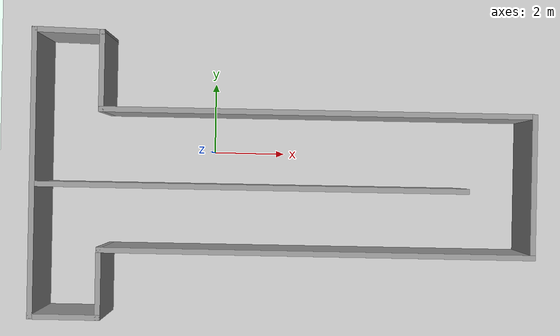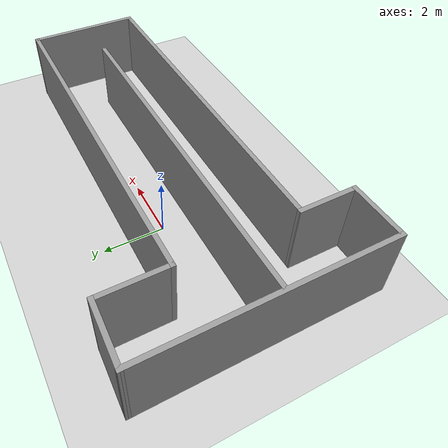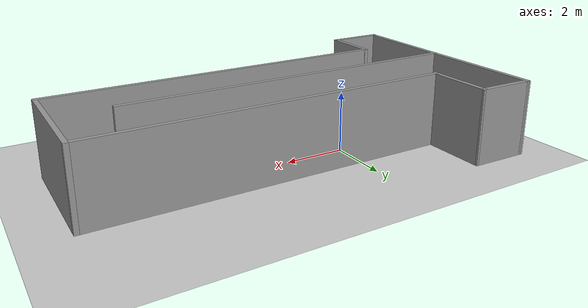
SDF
<sdf version="1.6">
 <world name="default">
  <light name="sun" type="directional">
   <pose>0 0 10 0 -0 0</pose>
   <diffuse>0.8 0.8 0.8 1</diffuse>
   <specular>0.2 0.2 0.2 1</specular>
   <attenuation>
    <range>1000</range>
    <constant>0.9</constant>
    <linear>0.01</linear>
    <quadratic>0.001</quadratic>
   </attenuation>
   <direction>-0.5 0.1 -0.9</direction>
  </light>
  <model name="ground_plane">
   <static>1</static>
   <link name="link">
    <collision name="collision">
     <geometry><plane><normal>0 0 1</normal><size>100 100</size></plane></geometry>
     <surface>
      <contact><collide_bitmask>65535</collide_bitmask></contact>
      <friction><ode><mu>100</mu><mu2>50</mu2></ode></friction>
     </surface>
    </collision>
    <visual name="visual">
     <cast_shadows>0</cast_shadows>
     <geometry><plane><normal>0 0 1</normal><size>100 100</size></plane></geometry>
     <material>
      <script><uri>file://media/materials/scripts/gazebo.material</uri><name>Gazebo/Grey</name></script>
     </material>
    </visual>
   </link>
  </model>
  <gravity>0 0 -9.8</gravity>
  <magnetic_field>6e-06 2.3e-05 -4.2e-05</magnetic_field>
  <atmosphere type="adiabatic"/>
  <physics name="default_physics" default="0" type="ode">
   <max_step_size>0.001</max_step_size>
   <real_time_factor>1</real_time_factor>
   <real_time_update_rate>1000</real_time_update_rate>
  </physics>
  <scene><ambient>0.4 0.4 0.4 1</ambient><background>0.7 0.7 0.7 1</background><shadows>1</shadows></scene>
  <spherical_coordinates>
   <surface_model>EARTH_WGS84</surface_model>
   <latitude_deg>0</latitude_deg>
   <longitude_deg>0</longitude_deg>
   <elevation>0</elevation>
   <heading_deg>0</heading_deg>
  </spherical_coordinates>
  <model name="t_shaped_world">
   <pose>2.003 -0.66972 0 0 -0 0</pose>
   <link name="Wall_1">
    <collision name="Wall_1_Collision">
     <geometry><box><size>8 0.15 2.5</size></box></geometry>
     <pose>0 0 1.25 0 -0 0</pose>
    </collision>
    <visual name="Wall_1_Visual">
     <pose>0 0 1.25 0 -0 0</pose>
     <geometry><box><size>8 0.15 2.5</size></box></geometry>
     <material>
      <script><uri>file://media/materials/scripts/gazebo.material</uri><name>Gazebo/Grey</name></script>
      <ambient>1 1 1 1</ambient>
     </material>
     <meta><layer>0</layer></meta>
    </visual>
    <pose>-6.849 -0.000999 0 0 0 -1.5708</pose>
   </link>
   <link name="Wall_14">
    <collision name="Wall_14_Collision">
     <geometry><box><size>12 0.15 2.5</size></box></geometry>
     <pose>0 0 1.25 0 -0 0</pose>
    </collision>
    <visual name="Wall_14_Visual">
     <pose>0 0 1.25 0 -0 0</pose>
     <geometry><box><size>12 0.15 2.5</size></box></geometry>
     <material>
      <script><uri>file://media/materials/scripts/gazebo.material</uri><name>Gazebo/Grey</name></script>
      <ambient>1 1 1 1</ambient>
     </material>
     <meta><layer>0</layer></meta>
    </visual>
    <pose>-0.907865 -0.297665 0 0 -0 0</pose>
   </link>
   <link name="Wall_2">
    <collision name="Wall_2_Collision">
     <geometry><box><size>2 0.15 2.5</size></box></geometry>
     <pose>0 0 1.25 0 -0 0</pose>
    </collision>
    <visual name="Wall_2_Visual">
     <pose>0 0 1.25 0 -0 0</pose>
     <geometry><box><size>2 0.15 2.5</size></box></geometry>
     <material>
      <script><uri>file://media/materials/scripts/gazebo.material</uri><name>Gazebo/Grey</name></script>
      <ambient>1 1 1 1</ambient>
     </material>
     <meta><layer>0</layer></meta>
    </visual>
    <pose>-5.924 -3.926 0 0 -0 0</pose>
   </link>
   <link name="Wall_3">
    <collision name="Wall_3_Collision">
     <geometry><box><size>2 0.15 2.5</size></box></geometry>
     <pose>0 0 1.25 0 -0 0</pose>
    </collision>
    <visual name="Wall_3_Visual">
     <pose>0 0 1.25 0 -0 0</pose>
     <geometry><box><size>2 0.15 2.5</size></box></geometry>
     <material>
      <script><uri>file://media/materials/scripts/gazebo.material</uri><name>Gazebo/Grey</name></script>
      <ambient>1 1 1 1</ambient>
     </material>
     <meta><layer>0</layer></meta>
    </visual>
    <pose>-4.999 -3.001 0 0 -0 1.5708</pose>
   </link>
   <link name="Wall_4">
    <collision name="Wall_4_Collision">
     <geometry><box><size>12 0.15 2.5</size></box></geometry>
     <pose>0 0 1.25 0 -0 0</pose>
    </collision>
    <visual name="Wall_4_Visual">
     <pose>0 0 1.25 0 -0 0</pose>
     <geometry><box><size>12 0.15 2.5</size></box></geometry>
     <material>
      <script><uri>file://media/materials/scripts/gazebo.material</uri><name>Gazebo/Grey</name></script>
      <ambient>1 1 1 1</ambient>
     </material>
     <meta><layer>0</layer></meta>
    </visual>
    <pose>0.925999 -2.076 0 0 -0 0</pose>
   </link>
   <link name="Wall_5">
    <collision name="Wall_5_Collision">
     <geometry><box><size>4 0.15 2.5</size></box></geometry>
     <pose>0 0 1.25 0 -0 0</pose>
    </collision>
    <visual name="Wall_5_Visual">
     <pose>0 0 1.25 0 -0 0</pose>
     <geometry><box><size>4 0.15 2.5</size></box></geometry>
     <material>
      <script><uri>file://media/materials/scripts/gazebo.material</uri><name>Gazebo/Grey</name></script>
      <ambient>1 1 1 1</ambient>
     </material>
     <meta><layer>0</layer></meta>
    </visual>
    <pose>6.851 -0.150999 0 0 -0 1.5708</pose>
   </link>
   <link name="Wall_6">
    <collision name="Wall_6_Collision">
     <geometry><box><size>12 0.15 2.5</size></box></geometry>
     <pose>0 0 1.25 0 -0 0</pose>
    </collision>
    <visual name="Wall_6_Visual">
     <pose>0 0 1.25 0 -0 0</pose>
     <geometry><box><size>12 0.15 2.5</size></box></geometry>
     <material>
      <script><uri>file://media/materials/scripts/gazebo.material</uri><name>Gazebo/Grey</name></script>
      <ambient>1 1 1 1</ambient>
     </material>
     <meta><layer>0</layer></meta>
    </visual>
    <pose>0.925999 1.774 0 0 -0 3.14159</pose>
   </link>
   <link name="Wall_7">
    <collision name="Wall_7_Collision">
     <geometry><box><size>2.25 0.15 2.5</size></box></geometry>
     <pose>0 0 1.25 0 -0 0</pose>
    </collision>
    <visual name="Wall_7_Visual">
     <pose>0 0 1.25 0 -0 0</pose>
     <geometry><box><size>2.25 0.15 2.5</size></box></geometry>
     <material>
      <script><uri>file://media/materials/scripts/gazebo.material</uri><name>Gazebo/Grey</name></script>
      <ambient>1 1 1 1</ambient>
     </material>
     <meta><layer>0</layer></meta>
    </visual>
    <pose>-4.999 2.824 0 0 -0 1.5708</pose>
   </link>
   <link name="Wall_8">
    <collision name="Wall_8_Collision">
     <geometry><box><size>2.00068 0.15 2.5</size></box></geometry>
     <pose>0 0 1.25 0 -0 0</pose>
    </collision>
    <visual name="Wall_8_Visual">
     <pose>0 0 1.25 0 -0 0</pose>
     <geometry><box><size>2.00068 0.15 2.5</size></box></geometry>
     <material>
      <script><uri>file://media/materials/scripts/gazebo.material</uri><name>Gazebo/Grey</name></script>
      <ambient>1 1 1 1</ambient>
     </material>
     <meta><layer>0</layer></meta>
    </visual>
    <pose>-5.924 3.899 0 0 -0 3.11457</pose>
   </link>
   <static>1</static>
  </model>
 </world>
</sdf>
